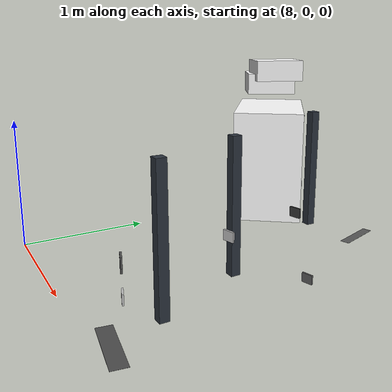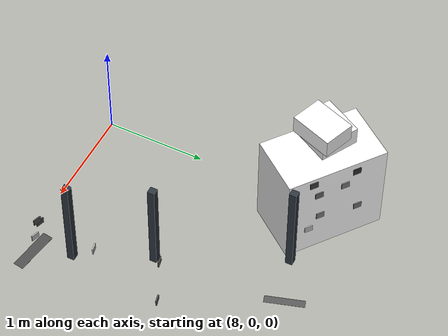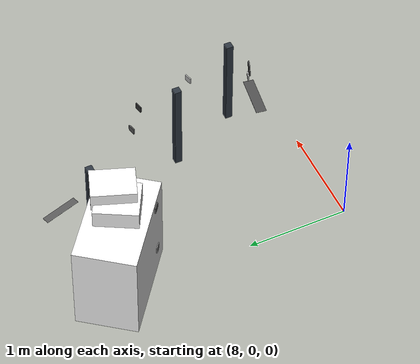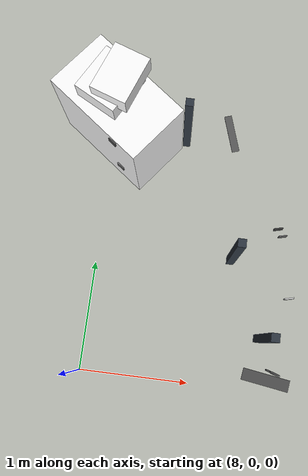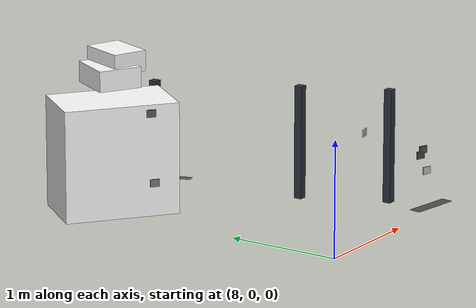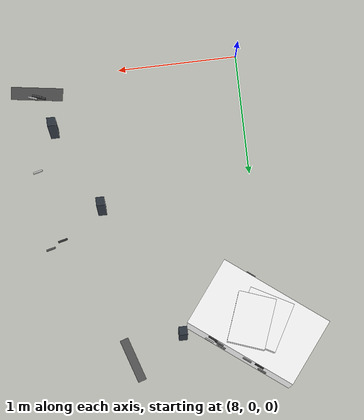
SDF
<sdf version="1.9">
 <world name="warehouse_irregular">
  <model name="concrete_patch_60">
   <static>true</static>
   <pose>9.163470922402354 2.4577617152129605 0.0006 0 0 -1.2643976294260075</pose>
   <link name="body">
    <visual name="surface">
     <geometry><box><size>0.3842058887774309 0.07426925938146911 0.001</size></box></geometry>
     <material>
      <ambient>0.3438035861972548 0.3438035861972548 0.3438035861972548 1</ambient>
      <diffuse>0.3438035861972548 0.3438035861972548 0.3438035861972548 1</diffuse>
     </material>
    </visual>
   </link>
  </model>
  <model name="concrete_patch_229">
   <static>true</static>
   <pose>9.711151502687773 0.11642637973369219 0.0006 0 0 -0.14748877497810753</pose>
   <link name="body">
    <visual name="surface">
     <geometry><box><size>0.4399498297605083 0.10764065731624485 0.001</size></box></geometry>
     <material>
      <ambient>0.2987450169285347 0.2987450169285347 0.2987450169285347 1</ambient>
      <diffuse>0.2987450169285347 0.2987450169285347 0.2987450169285347 1</diffuse>
     </material>
    </visual>
   </link>
  </model>
  <model name="post_1_-1">
   <static>true</static>
   <pose>9.598088036948822 0.4759306849748642 0.5 0 0 0</pose>
   <link name="body">
    <visual name="surface">
     <geometry><box><size>0.07 0.07 1</size></box></geometry>
     <material><ambient>0.18 0.21 0.25 1</ambient><diffuse>0.18 0.21 0.25 1</diffuse></material>
    </visual>
    <collision name="solid"><geometry><box><size>0.07 0.07 1</size></box></geometry></collision>
   </link>
  </model>
  <model name="panel_3_0_-1">
   <static>true</static>
   <pose>9.765009676290287 0.8294161883499759 0.5233433334009688 0 0 0.2332133541854401</pose>
   <link name="body">
    <visual name="surface">
     <geometry><box><size>0.08 0.012 0.065</size></box></geometry>
     <material>
      <ambient>0.7868498892282788 0.7868498892282788 0.7868498892282788 1</ambient>
      <diffuse>0.7868498892282788 0.7868498892282788 0.7868498892282788 1</diffuse>
     </material>
    </visual>
   </link>
  </model>
  <model name="panel_3_0_1">
   <static>true</static>
   <pose>9.62403557985102 1.4229027544432045 0.5233433334009688 0 0 0.2332133541854401</pose>
   <link name="body">
    <visual name="surface">
     <geometry><box><size>0.08 0.012 0.065</size></box></geometry>
     <material>
      <ambient>0.22995526733335098 0.22995526733335098 0.22995526733335098 1</ambient>
      <diffuse>0.22995526733335098 0.22995526733335098 0.22995526733335098 1</diffuse>
     </material>
    </visual>
   </link>
  </model>
  <model name="panel_3_6_1">
   <static>true</static>
   <pose>9.741531036654502 1.4508120902309125 0.09850355030783763 0 0 0.2332133541854401</pose>
   <link name="body">
    <visual name="surface">
     <geometry><box><size>0.08 0.012 0.065</size></box></geometry>
     <material>
      <ambient>0.3725469036403679 0.3725469036403679 0.3725469036403679 1</ambient>
      <diffuse>0.3725469036403679 0.3725469036403679 0.3725469036403679 1</diffuse>
     </material>
    </visual>
   </link>
  </model>
  <model name="post_3_-1">
   <static>true</static>
   <pose>9.274584529694156 1.1736812645164438 0.5 0 0 0</pose>
   <link name="body">
    <visual name="surface">
     <geometry><box><size>0.07 0.07 1</size></box></geometry>
     <material><ambient>0.18 0.21 0.25 1</ambient><diffuse>0.18 0.21 0.25 1</diffuse></material>
    </visual>
    <collision name="solid"><geometry><box><size>0.07 0.07 1</size></box></geometry></collision>
   </link>
  </model>
  <model name="cabinet_5">
   <static>true</static>
   <pose>8.104521649759363 2.3060066962295953 0.48691837130325677 0 0 -0.6509207918832999</pose>
   <link name="body">
    <visual name="surface">
     <geometry><box><size>1 0.6 0.9738367426065135</size></box></geometry>
     <material>
      <ambient>1 1 1 1</ambient>
      <diffuse>1 1 1 1</diffuse>
      <pbr>
       <metal>
        <albedo_map>model://feature_warehouse_materials/textures/storage_05.png</albedo_map>
        <roughness>.9</roughness>
        <metalness>0</metalness>
       </metal>
      </pbr>
     </material>
    </visual>
    <collision name="solid"><geometry><box><size>1 0.6 0.9738367426065135</size></box></geometry></collision>
   </link>
  </model>
  <model name="panel_5_0_-1">
   <static>true</static>
   <pose>8.118650020888687 1.9118516741875031 0.9004756527881151 0 0 -0.6509207918832999</pose>
   <link name="body">
    <visual name="surface">
     <geometry><box><size>0.08 0.012 0.065</size></box></geometry>
     <material>
      <ambient>0.349603103206327 0.349603103206327 0.349603103206327 1</ambient>
      <diffuse>0.349603103206327 0.349603103206327 0.349603103206327 1</diffuse>
     </material>
    </visual>
   </link>
  </model>
  <model name="panel_5_0_1">
   <static>true</static>
   <pose>8.488260718600431 2.3971226625404416 0.9004756527881151 0 0 -0.6509207918832999</pose>
   <link name="body">
    <visual name="surface">
     <geometry><box><size>0.08 0.012 0.065</size></box></geometry>
     <material>
      <ambient>0.2400718576479961 0.2400718576479961 0.2400718576479961 1</ambient>
      <diffuse>0.2400718576479961 0.2400718576479961 0.2400718576479961 1</diffuse>
     </material>
    </visual>
   </link>
  </model>
  <model name="panel_5_1_1">
   <static>true</static>
   <pose>8.107721805125621 2.6869633014652607 0.36876414017484127 0 0 -0.6509207918832999</pose>
   <link name="body">
    <visual name="surface">
     <geometry><box><size>0.08 0.012 0.065</size></box></geometry>
     <material>
      <ambient>0.4459192907717482 0.4459192907717482 0.4459192907717482 1</ambient>
      <diffuse>0.4459192907717482 0.4459192907717482 0.4459192907717482 1</diffuse>
     </material>
    </visual>
   </link>
  </model>
  <model name="panel_5_2_1">
   <static>true</static>
   <pose>8.421016171214943 2.448340033191054 0.4331476063568874 0 0 -0.6509207918832999</pose>
   <link name="body">
    <visual name="surface">
     <geometry><box><size>0.08 0.012 0.065</size></box></geometry>
     <material>
      <ambient>0.48959549990806117 0.48959549990806117 0.48959549990806117 1</ambient>
      <diffuse>0.48959549990806117 0.48959549990806117 0.48959549990806117 1</diffuse>
     </material>
    </visual>
   </link>
  </model>
  <model name="panel_5_3_-1">
   <static>true</static>
   <pose>8.140879461212837 1.8949204354669749 0.29002345874673546 0 0 -0.6509207918832999</pose>
   <link name="body">
    <visual name="surface">
     <geometry><box><size>0.08 0.012 0.065</size></box></geometry>
     <material>
      <ambient>0.4700423599430258 0.4700423599430258 0.4700423599430258 1</ambient>
      <diffuse>0.4700423599430258 0.4700423599430258 0.4700423599430258 1</diffuse>
     </material>
    </visual>
   </link>
  </model>
  <model name="panel_5_3_1">
   <static>true</static>
   <pose>8.510490158924581 2.3801914238199133 0.29002345874673546 0 0 -0.6509207918832999</pose>
   <link name="body">
    <visual name="surface">
     <geometry><box><size>0.08 0.012 0.065</size></box></geometry>
     <material>
      <ambient>0.7370833341214047 0.7370833341214047 0.7370833341214047 1</ambient>
      <diffuse>0.7370833341214047 0.7370833341214047 0.7370833341214047 1</diffuse>
     </material>
    </visual>
   </link>
  </model>
  <model name="panel_5_4_1">
   <static>true</static>
   <pose>8.138420058536852 2.663581720587393 0.8760011368677418 0 0 -0.6509207918832999</pose>
   <link name="body">
    <visual name="surface">
     <geometry><box><size>0.08 0.012 0.065</size></box></geometry>
     <material>
      <ambient>0.17995139601642682 0.17995139601642682 0.17995139601642682 1</ambient>
      <diffuse>0.17995139601642682 0.17995139601642682 0.17995139601642682 1</diffuse>
     </material>
    </visual>
   </link>
  </model>
  <model name="panel_5_5_1">
   <static>true</static>
   <pose>8.439765685975368 2.4340593088150118 0.7317494060061005 0 0 -0.6509207918832999</pose>
   <link name="body">
    <visual name="surface">
     <geometry><box><size>0.08 0.012 0.065</size></box></geometry>
     <material>
      <ambient>0.3978258456567462 0.3978258456567462 0.3978258456567462 1</ambient>
      <diffuse>0.3978258456567462 0.3978258456567462 0.3978258456567462 1</diffuse>
     </material>
    </visual>
   </link>
  </model>
  <model name="panel_5_6_1">
   <static>true</static>
   <pose>8.227399405356044 2.5958098585780833 0.7370553252607454 0 0 -0.6509207918832999</pose>
   <link name="body">
    <visual name="surface">
     <geometry><box><size>0.08 0.012 0.065</size></box></geometry>
     <material>
      <ambient>0.48087936105715023 0.48087936105715023 0.48087936105715023 1</ambient>
      <diffuse>0.48087936105715023 0.48087936105715023 0.48087936105715023 1</diffuse>
     </material>
    </visual>
   </link>
  </model>
  <model name="carton_5_1">
   <static>true</static>
   <pose>8.07658009993947 2.3060066962295953 1.1938367426065137 0 0 -0.5009207918832999</pose>
   <link name="body">
    <visual name="surface">
     <geometry><box><size>0.38 0.42 0.18</size></box></geometry>
     <material>
      <ambient>1 1 1 1</ambient>
      <diffuse>1 1 1 1</diffuse>
      <pbr>
       <metal>
        <albedo_map>model://feature_warehouse_materials/textures/storage_05.png</albedo_map>
        <roughness>.9</roughness>
        <metalness>0</metalness>
       </metal>
      </pbr>
     </material>
    </visual>
    <collision name="solid"><geometry><box><size>0.38 0.42 0.18</size></box></geometry></collision>
   </link>
  </model>
  <model name="carton_5_2">
   <static>true</static>
   <pose>8.170220309631242 2.3060066962295953 1.3138367426065136 0 0 -0.3509207918832999</pose>
   <link name="body">
    <visual name="surface">
     <geometry><box><size>0.31 0.42 0.18</size></box></geometry>
     <material>
      <ambient>1 1 1 1</ambient>
      <diffuse>1 1 1 1</diffuse>
      <pbr>
       <metal>
        <albedo_map>model://feature_warehouse_materials/textures/storage_05.png</albedo_map>
        <roughness>.9</roughness>
        <metalness>0</metalness>
       </metal>
      </pbr>
     </material>
    </visual>
    <collision name="solid"><geometry><box><size>0.31 0.42 0.18</size></box></geometry></collision>
   </link>
  </model>
  <model name="post_5_1">
   <static>true</static>
   <pose>8.724521649759362 2.3060066962295953 0.5 0 0 0</pose>
   <link name="body">
    <visual name="surface">
     <geometry><box><size>0.07 0.07 1</size></box></geometry>
     <material><ambient>0.18 0.21 0.25 1</ambient><diffuse>0.18 0.21 0.25 1</diffuse></material>
    </visual>
    <collision name="solid"><geometry><box><size>0.07 0.07 1</size></box></geometry></collision>
   </link>
  </model>
  <model name="panel_39_2_1">
   <static>true</static>
   <pose>9.741325648617346 0.1829710742585262 0.2955715300910273 0 0 -0.32025118661345464</pose>
   <link name="body">
    <visual name="surface">
     <geometry><box><size>0.08 0.012 0.065</size></box></geometry>
     <material>
      <ambient>0.7352126053876871 0.7352126053876871 0.7352126053876871 1</ambient>
      <diffuse>0.7352126053876871 0.7352126053876871 0.7352126053876871 1</diffuse>
     </material>
    </visual>
   </link>
  </model>
  <model name="panel_39_4_1">
   <static>true</static>
   <pose>9.70063566796577 0.1964666469032449 0.4878584591445745 0 0 -0.32025118661345464</pose>
   <link name="body">
    <visual name="surface">
     <geometry><box><size>0.08 0.012 0.065</size></box></geometry>
     <material>
      <ambient>0.30305588190719923 0.30305588190719923 0.30305588190719923 1</ambient>
      <diffuse>0.30305588190719923 0.30305588190719923 0.30305588190719923 1</diffuse>
     </material>
    </visual>
   </link>
  </model>
  <model name="panel_39_6_1">
   <static>true</static>
   <pose>9.672419629581217 0.20582500956813737 0.444535507570079 0 0 -0.32025118661345464</pose>
   <link name="body">
    <visual name="surface">
     <geometry><box><size>0.08 0.012 0.065</size></box></geometry>
     <material>
      <ambient>0.281640221229677 0.281640221229677 0.281640221229677 1</ambient>
      <diffuse>0.281640221229677 0.281640221229677 0.281640221229677 1</diffuse>
     </material>
    </visual>
   </link>
  </model>
 </world>
</sdf>
